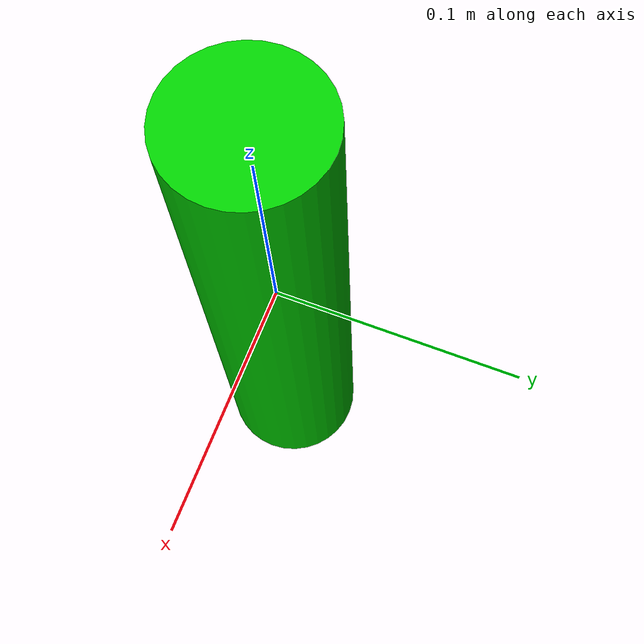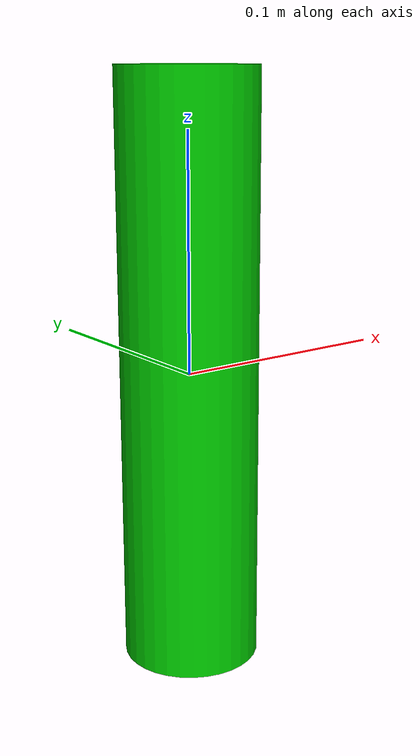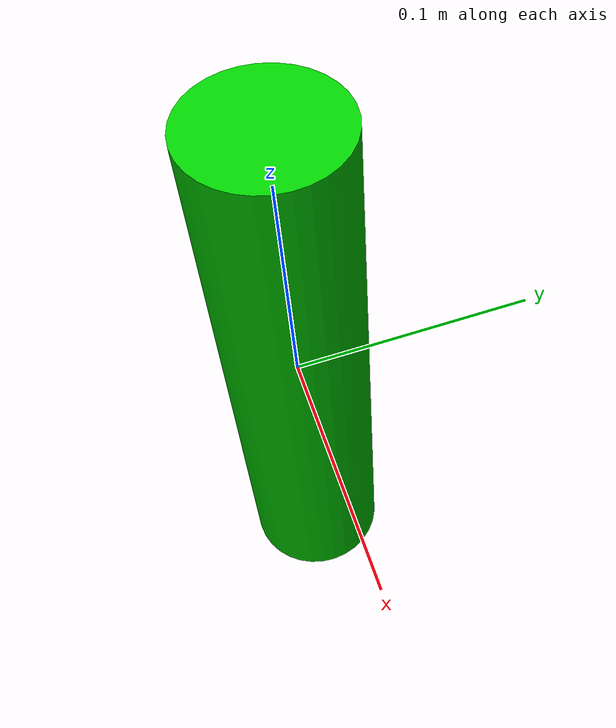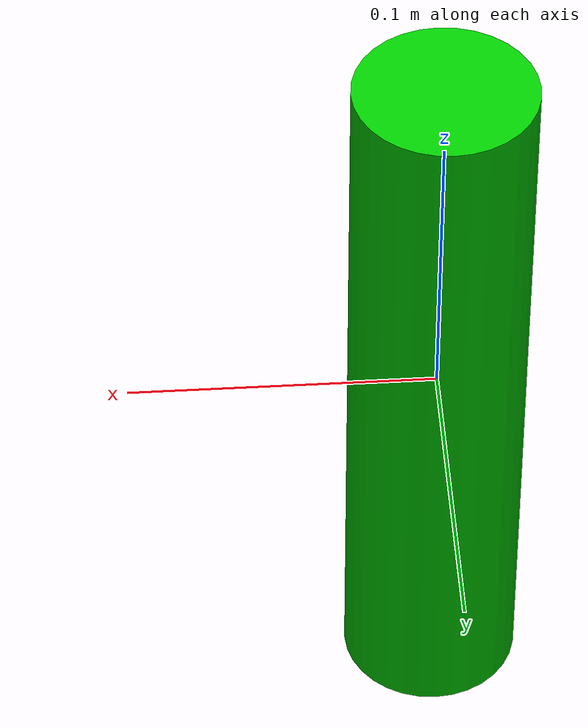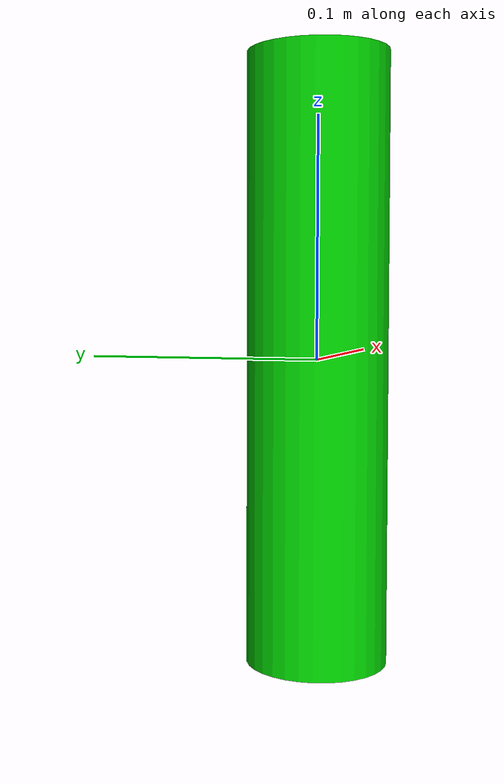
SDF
<?xml version="1.0" ?>
<sdf version='1.5'>
  <model name="insert_task_cylinder1_block2">
      <link name='link'>
        <inertial>
        <pose>0 0 0 0 0 0</pose>
          <mass>0.3</mass>
          <inertia>
            <ixx>3.7</ixx>
            <ixy>0.0</ixy>
            <ixz>0.0</ixz>
            <iyy>3.7</iyy>
            <iyz>0.0</iyz>
            <izz>2.4</izz>
          </inertia>
        </inertial>
        <collision name='collision'>
        <pose>0 0 0 0 0 0</pose>
          <geometry>
            <mesh>
              <uri>model://insert_task_cylinder1_block2/meshes/insert_task_cylinder1_block2.dae</uri>
              <scale>1 1 1</scale>
            </mesh>
          </geometry>
            <surface>
            <friction>
              <ode>
                <mu>10.0</mu>
                <mu2>10.0</mu2>
              </ode>
            </friction>
          </surface>
        </collision>
        <visual name='visual'>
          <geometry>
            <mesh>
              <uri>model://insert_task_cylinder1_block2/meshes/insert_task_cylinder1_block2.dae</uri>
              <scale>1 1 1</scale>
            </mesh>
          </geometry>
        </visual>
        <gravity>1</gravity>
      </link>
  </model>
</sdf>
